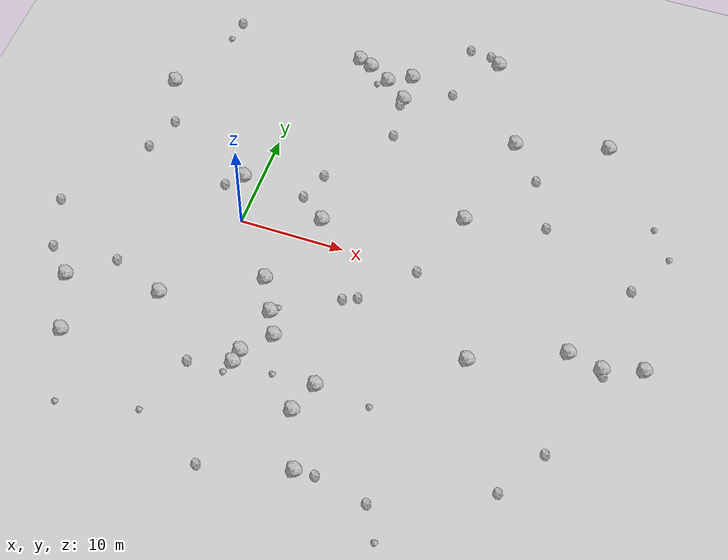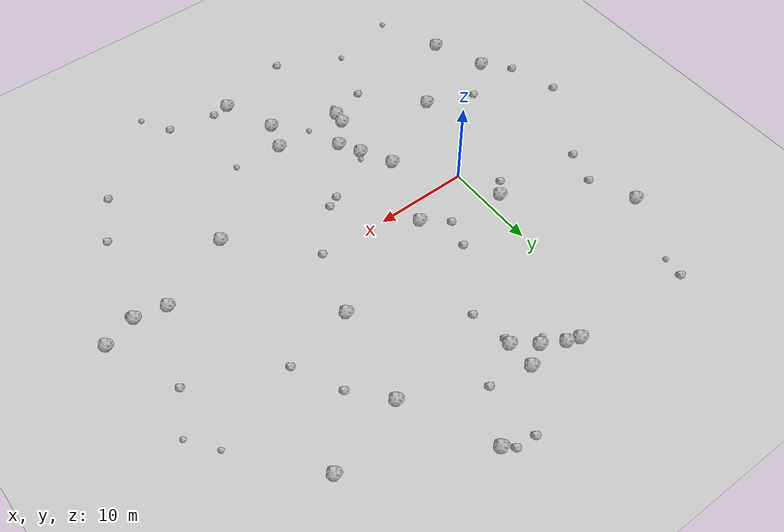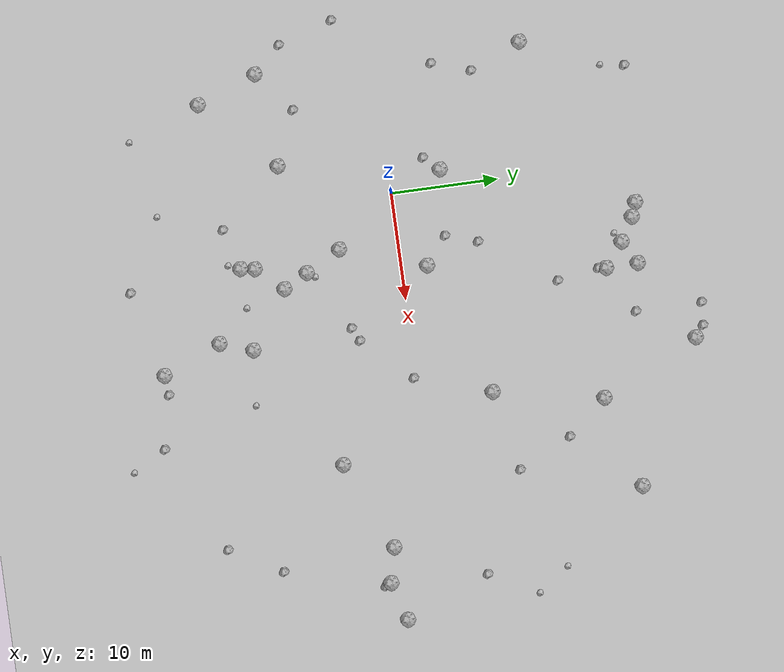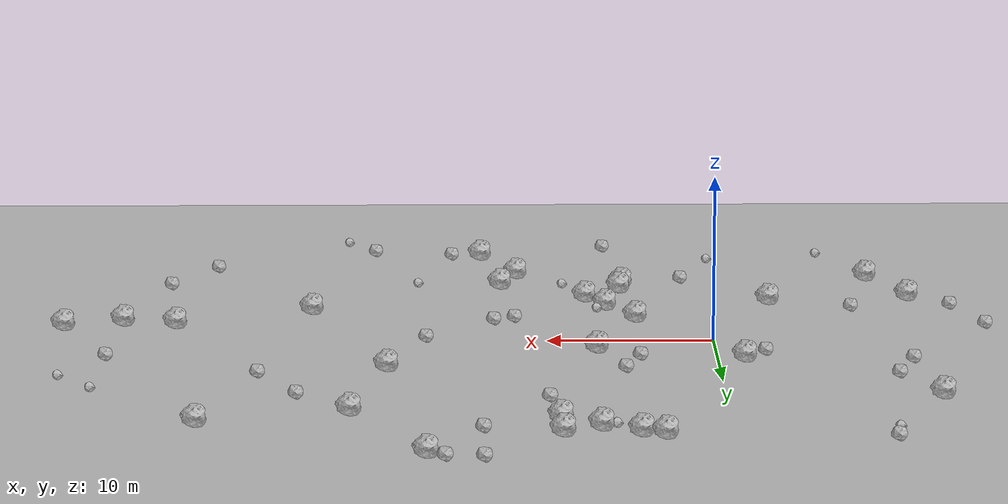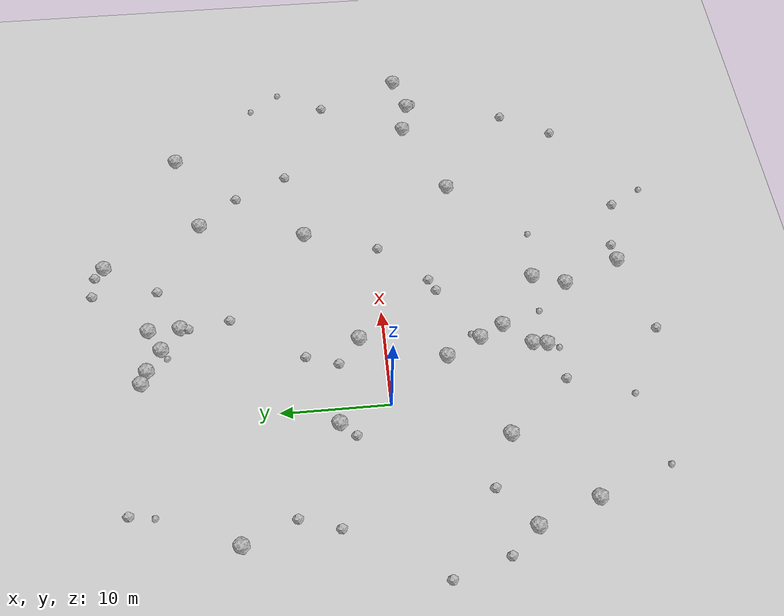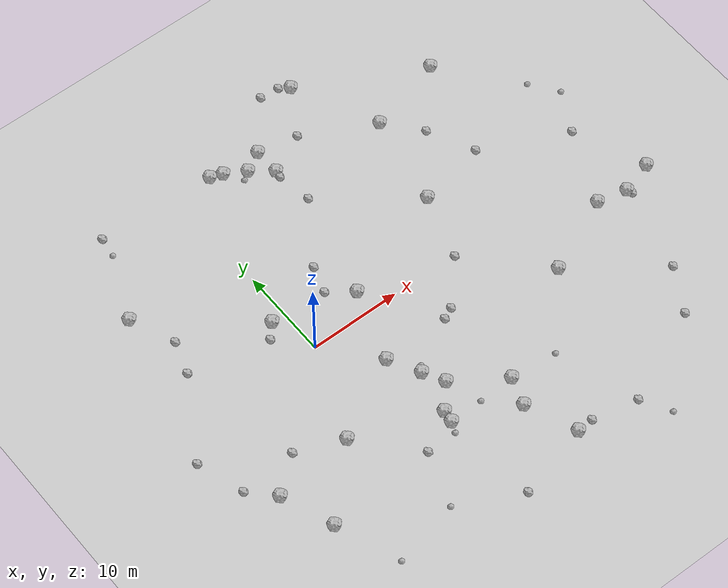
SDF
<sdf version="1.6">
 <world name="default">
  <include><uri>model://custom_ground</uri></include>
  <include><uri>model://sun</uri></include>
  <model name="rock1_0_0">
   <include><uri>model://rock1</uri><pose>9.647805996674009 18.82525347591028 0.5 0 0 0</pose></include>
  </model>
  <model name="rock1_0_1">
   <include><uri>model://rock1</uri><pose>30.14955270949092 19.38749987170479 0.5 0 0 0</pose></include>
  </model>
  <model name="rock1_0_2">
   <include><uri>model://rock1</uri><pose>6.286250552514286 -8.807822938171142 0.5 0 0 0</pose></include>
  </model>
  <model name="rock1_0_3">
   <include><uri>model://rock1</uri><pose>21.57044145342762 17.001756983942258 0.5 0 0 0</pose></include>
  </model>
  <model name="rock1_0_4">
   <include><uri>model://rock1</uri><pose>13.948814622853114 -23.19894125621399 0.5 0 0 0</pose></include>
  </model>
  <model name="rock1_0_5">
   <include><uri>model://rock1</uri><pose>19.608302852200815 6.788793556254987 0.5 0 0 0</pose></include>
  </model>
  <model name="rock1_0_6">
   <include><uri>model://rock1</uri><pose>3.9498882290787733 22.348185204923432 0.5 0 0 0</pose></include>
  </model>
  <model name="rock1_0_7">
   <include><uri>model://rock1</uri><pose>35.86363487273735 -4.967621130076903 0.5 0 0 0</pose></include>
  </model>
  <model name="rock1_0_8">
   <include><uri>model://rock1</uri><pose>5.276318932177222 -13.549015815785456 0.5 0 0 0</pose></include>
  </model>
  <model name="rock1_0_9">
   <include><uri>model://rock1</uri><pose>17.173128119663424 26.183405159375575 0.5 0 0 0</pose></include>
  </model>
  <model name="rock1_0_10">
   <include><uri>model://rock1</uri><pose>32.627688904720586 -4.239350699286696 0.5 0 0 0</pose></include>
  </model>
  <model name="rock1_0_11">
   <include><uri>model://rock1</uri><pose>39.425707797349204 -3.886486265646141 0.5 0 0 0</pose></include>
  </model>
  <model name="rock1_0_12">
   <include><uri>model://rock1</uri><pose>-12.698571005447004 -11.104939181028438 0.5 0 0 0</pose></include>
  </model>
  <model name="rock1_0_13">
   <include><uri>model://rock1</uri><pose>11.707732759311181 -17.736768907683608 0.5 0 0 0</pose></include>
  </model>
  <model name="rock1_0_14">
   <include><uri>model://rock1</uri><pose>-12.335774248969082 13.693248461509867 0.5 0 0 0</pose></include>
  </model>
  <model name="rock1_0_15">
   <include><uri>model://rock1</uri><pose>7.431120918871571 20.587823410565612 0.5 0 0 0</pose></include>
  </model>
  <model name="rock1_0_16">
   <include><uri>model://rock1</uri><pose>5.258989763411019 21.85668837933948 0.5 0 0 0</pose></include>
  </model>
  <model name="rock1_0_17">
   <include><uri>model://rock1</uri><pose>4.535249603685909 -5.532533549521116 0.5 0 0 0</pose></include>
  </model>
  <model name="rock1_0_18">
   <include><uri>model://rock1</uri><pose>-1.5548455478031862 4.765475880028809 0.5 0 0 0</pose></include>
  </model>
  <model name="rock1_0_19">
   <include><uri>model://rock1</uri><pose>12.737983086583128 -14.695589189227887 0.5 0 0 0</pose></include>
  </model>
  <model name="rock1_0_20">
   <include><uri>model://rock1</uri><pose>-10.584871531234992 -16.71809838869063 0.5 0 0 0</pose></include>
  </model>
  <model name="rock1_0_21">
   <include><uri>model://rock1</uri><pose>-3.9216911331897784 -10.142370566206349 0.5 0 0 0</pose></include>
  </model>
  <model name="rock1_0_22">
   <include><uri>model://rock1</uri><pose>7.494288331526278 -11.067427074349066 0.5 0 0 0</pose></include>
  </model>
  <model name="rock1_0_23">
   <include><uri>model://rock1</uri><pose>9.595066531621576 21.80125791827433 0.5 0 0 0</pose></include>
  </model>
  <model name="rock1_0_24">
   <include><uri>model://rock1</uri><pose>5.080699083628982 -14.872333043396015 0.5 0 0 0</pose></include>
  </model>
  <model name="rock1_0_25">
   <include><uri>model://rock1</uri><pose>24.415207560924543 -7.875359065724712 0.5 0 0 0</pose></include>
  </model>
  <model name="rock1_0_26">
   <include><uri>model://rock1</uri><pose>7.137574873047509 2.3744576738772523 0.5 0 0 0</pose></include>
  </model>
  <model name="rock2_0_0">
   <include><uri>model://rock2</uri><pose>17.29677814809635 -0.2718569112765614 0.3 0 0 0</pose></include>
  </model>
  <model name="rock2_0_1">
   <include><uri>model://rock2</uri><pose>10.142456065014926 14.240845012966908 0.3 0 0 0</pose></include>
  </model>
  <model name="rock2_0_2">
   <include><uri>model://rock2</uri><pose>-10.345253709911423 8.913257775941162 0.3 0 0 0</pose></include>
  </model>
  <model name="rock2_0_3">
   <include><uri>model://rock2</uri><pose>16.097111861417993 27.033245804952955 0.3 0 0 0</pose></include>
  </model>
  <model name="rock2_0_4">
   <include><uri>model://rock2</uri><pose>36.07638793135187 -5.499695298475622 0.3 0 0 0</pose></include>
  </model>
  <model name="rock2_0_5">
   <include><uri>model://rock2</uri><pose>13.962043625001307 27.205373706764007 0.3 0 0 0</pose></include>
  </model>
  <model name="rock2_0_6">
   <include><uri>model://rock2</uri><pose>-8.894393371948645 23.123084564227234 0.3 0 0 0</pose></include>
  </model>
  <model name="rock2_0_7">
   <include><uri>model://rock2</uri><pose>-16.767002455756707 -3.364641312894065 0.3 0 0 0</pose></include>
  </model>
  <model name="rock2_0_8">
   <include><uri>model://rock2</uri><pose>-8.957565446114575 -8.029547607908832 0.3 0 0 0</pose></include>
  </model>
  <model name="rock2_0_9">
   <include><uri>model://rock2</uri><pose>33.459806316162975 -14.677666894675358 0.3 0 0 0</pose></include>
  </model>
  <model name="rock2_0_10">
   <include><uri>model://rock2</uri><pose>36.24229256268524 4.055223317813571 0.3 0 0 0</pose></include>
  </model>
  <model name="rock2_0_11">
   <include><uri>model://rock2</uri><pose>5.539321627832759 7.393673998144948 0.3 0 0 0</pose></include>
  </model>
  <model name="rock2_0_12">
   <include><uri>model://rock2</uri><pose>27.070941744705287 8.362846305513962 0.3 0 0 0</pose></include>
  </model>
  <model name="rock2_0_13">
   <include><uri>model://rock2</uri><pose>13.975990661967579 21.046634532721207 0.3 0 0 0</pose></include>
  </model>
  <model name="rock2_0_14">
   <include><uri>model://rock2</uri><pose>24.655126035801985 13.359512873589395 0.3 0 0 0</pose></include>
  </model>
  <model name="rock2_0_15">
   <include><uri>model://rock2</uri><pose>-11.529335283331239 5.301720459436211 0.3 0 0 0</pose></include>
  </model>
  <model name="rock2_0_16">
   <include><uri>model://rock2</uri><pose>20.708997393180212 -24.095956158134978 0.3 0 0 0</pose></include>
  </model>
  <model name="rock2_0_17">
   <include><uri>model://rock2</uri><pose>13.177776516374216 -4.761186565020068 0.3 0 0 0</pose></include>
  </model>
  <model name="rock2_0_18">
   <include><uri>model://rock2</uri><pose>11.908103391193691 -5.362095350811462 0.3 0 0 0</pose></include>
  </model>
  <model name="rock2_0_19">
   <include><uri>model://rock2</uri><pose>15.754449637893707 -23.02892938082003 0.3 0 0 0</pose></include>
  </model>
  <model name="rock2_0_20">
   <include><uri>model://rock2</uri><pose>30.744974882864184 -19.527946019234122 0.3 0 0 0</pose></include>
  </model>
  <model name="rock2_0_21">
   <include><uri>model://rock2</uri><pose>5.894569892706578 -25.295856669808437 0.3 0 0 0</pose></include>
  </model>
  <model name="rock2_0_22">
   <include><uri>model://rock2</uri><pose>1.231316683336253 -15.99835879620487 0.3 0 0 0</pose></include>
  </model>
  <model name="rock2_0_23">
   <include><uri>model://rock2</uri><pose>-15.147324904276598 -8.504875318801929 0.3 0 0 0</pose></include>
  </model>
  <model name="rock2_0_24">
   <include><uri>model://rock2</uri><pose>4.567823696088247 4.407383654196543 0.3 0 0 0</pose></include>
  </model>
  <model name="rock2_0_25">
   <include><uri>model://rock2</uri><pose>9.517089704631676 18.119724375973725 0.3 0 0 0</pose></include>
  </model>
  <model name="rock2_0_26">
   <include><uri>model://rock2</uri><pose>-2.9129524897375916 3.360842174596293 0.3 0 0 0</pose></include>
  </model>
  <model name="rock3_0_0">
   <include><uri>model://rock3</uri><pose>-0.8078409601034302 -21.940229033310963 0.2 0 0 0</pose></include>
  </model>
  <model name="rock3_0_1">
   <include><uri>model://rock3</uri><pose>-9.230273460612821 20.86080399230223 0.2 0 0 0</pose></include>
  </model>
  <model name="rock3_0_2">
   <include><uri>model://rock3</uri><pose>17.84355409667029 -15.170037160717078 0.2 0 0 0</pose></include>
  </model>
  <model name="rock3_0_3">
   <include><uri>model://rock3</uri><pose>38.62751778206844 8.58236965822676 0.2 0 0 0</pose></include>
  </model>
  <model name="rock3_0_4">
   <include><uri>model://rock3</uri><pose>6.744086351869981 -8.087946780495585 0.2 0 0 0</pose></include>
  </model>
  <model name="rock3_0_5">
   <include><uri>model://rock3</uri><pose>36.53066115239426 11.478990714374937 0.2 0 0 0</pose></include>
  </model>
  <model name="rock3_0_6">
   <include><uri>model://rock3</uri><pose>6.492049355583639 19.996475859365844 0.2 0 0 0</pose></include>
  </model>
  <model name="rock3_0_7">
   <include><uri>model://rock3</uri><pose>8.746733974646812 -14.802816454833716 0.2 0 0 0</pose></include>
  </model>
  <model name="rock3_0_8">
   <include><uri>model://rock3</uri><pose>4.582821432572452 -15.999396808101007 0.2 0 0 0</pose></include>
  </model>
  <model name="rock3_0_9">
   <include><uri>model://rock3</uri><pose>22.469046108815576 -27.22773708478155 0.2 0 0 0</pose></include>
  </model>
  <model name="rock3_0_10">
   <include><uri>model://rock3</uri><pose>-8.033301978173085 -23.566718410463615 0.2 0 0 0</pose></include>
  </model>
 </world>
</sdf>
